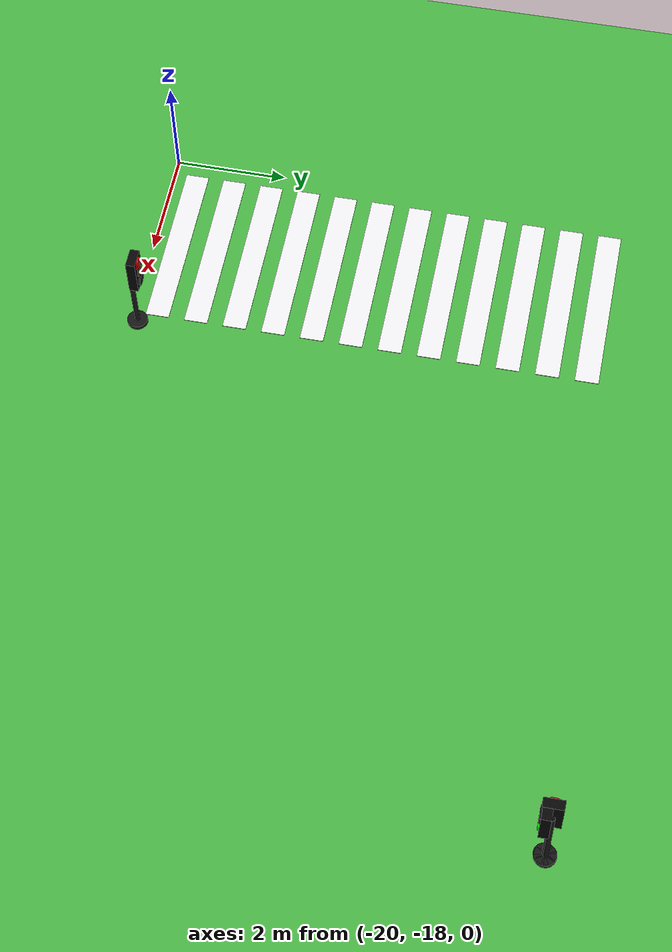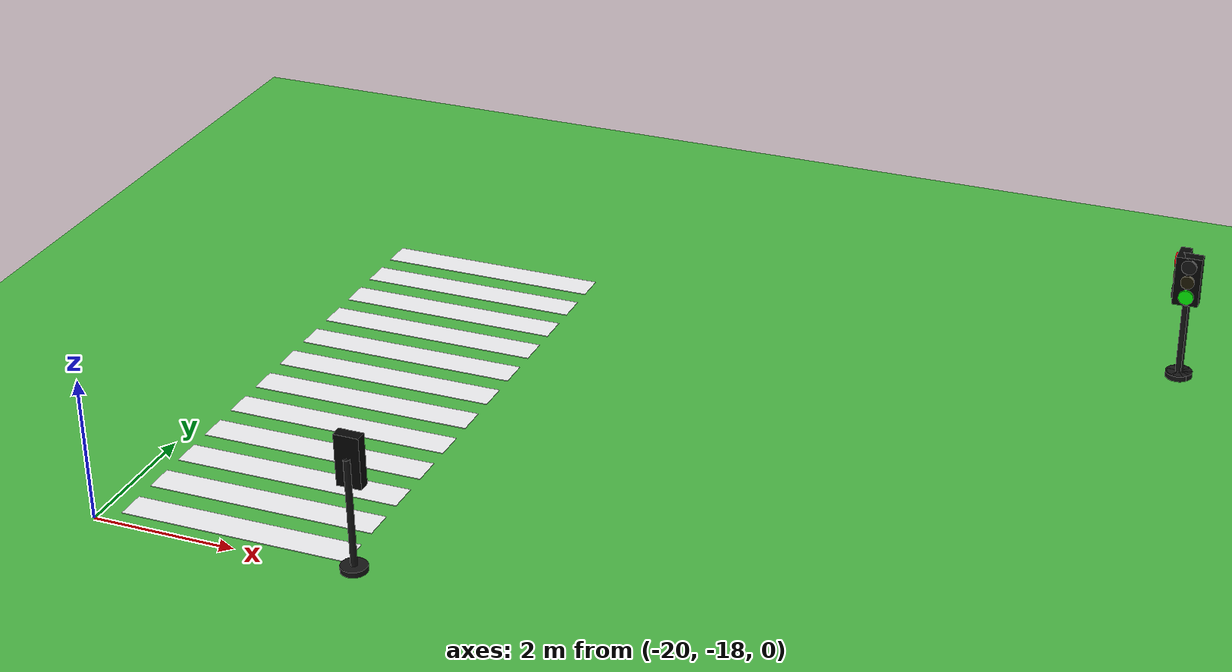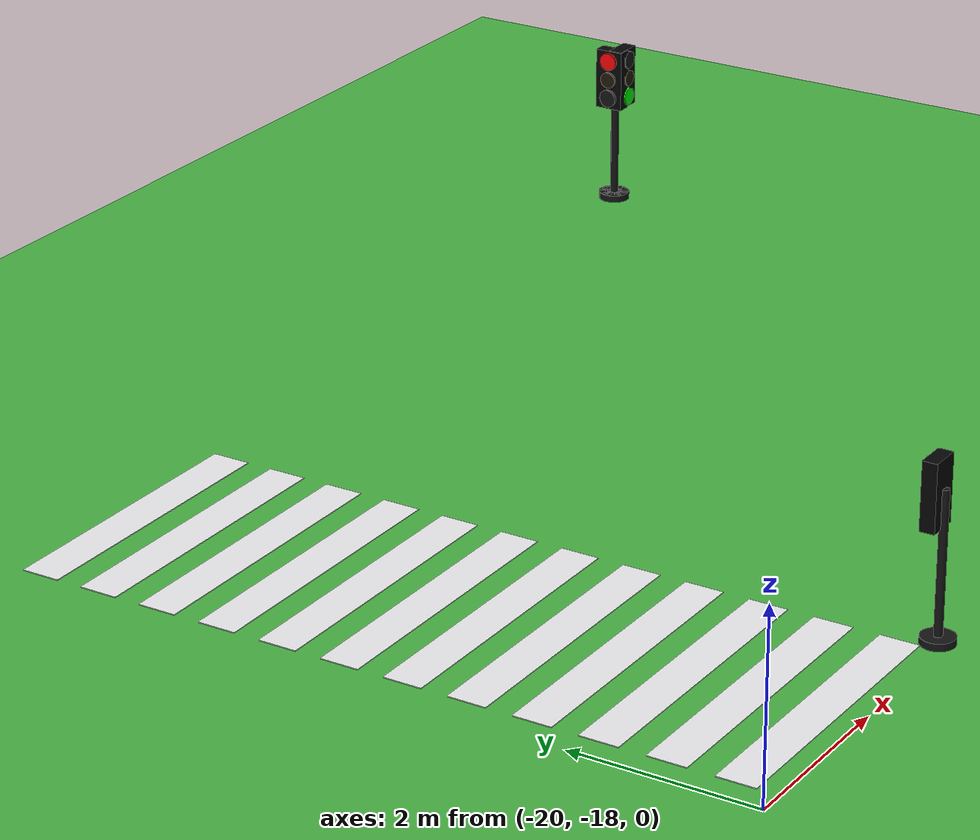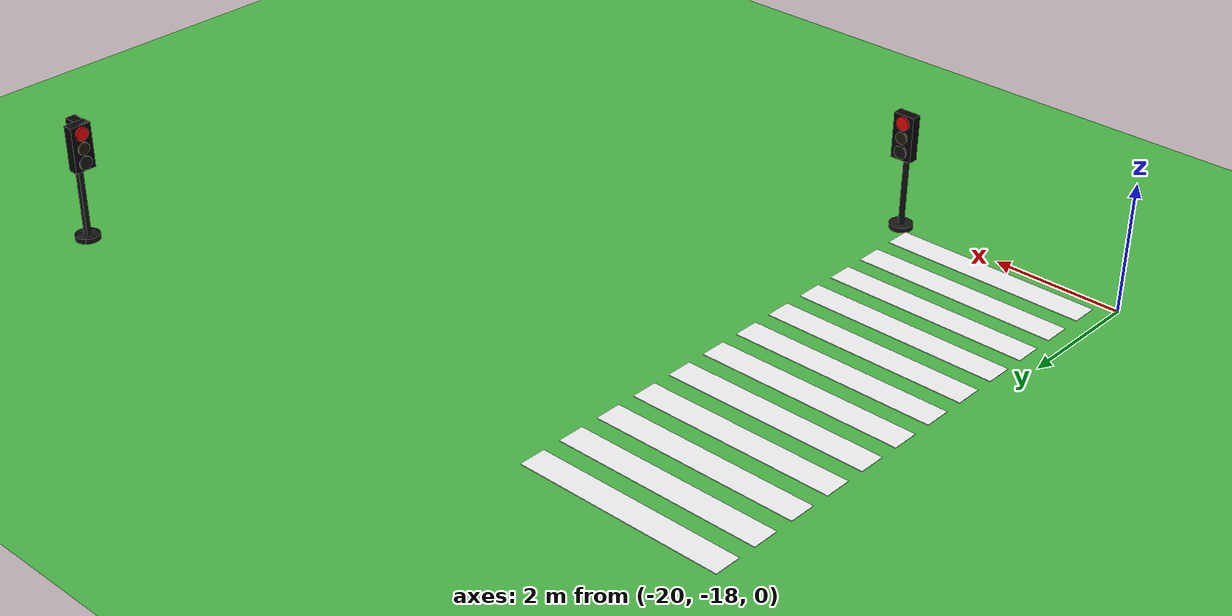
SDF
<sdf version="1.10">
 <world name="city_second">
  <model name="ground_plane">
   <static>true</static>
   <link name="link">
    <collision name="collision">
     <geometry><plane><normal>0 0 1</normal><size>300 300</size></plane></geometry>
    </collision>
    <visual name="visual">
     <geometry><plane><normal>0 0 1</normal><size>300 300</size></plane></geometry>
     <material>
      <ambient>0.280000001 0.689999998 0.25999999 1</ambient>
      <diffuse>0.280000001 0.689999998 0.25999999 1</diffuse>
      <specular>0.0299999993 0.0299999993 0.0299999993 1</specular>
     </material>
    </visual>
    <inertial>
     <mass>1</mass>
     <inertia><ixx>1</ixx><ixy>0</ixy><ixz>0</ixz><iyy>1</iyy><iyz>0</iyz><izz>1</izz></inertia>
    </inertial>
   </link>
  </model>
  <model name="crosswalk_v_2_1_east_5_6">
   <static>true</static>
   <pose>-18.1281 -13.730499999999999 0.017000000000000001 0 0 0</pose>
   <link name="stripe_1">
    <collision name="collision">
     <geometry><box><size>3.2000000000000002 0.41999999999999998 0.01</size></box></geometry>
    </collision>
    <visual name="visual">
     <geometry><box><size>3.2000000000000002 0.41999999999999998 0.01</size></box></geometry>
     <material>
      <ambient>0.920000017 0.920000017 0.930000007 1</ambient>
      <diffuse>0.920000017 0.920000017 0.930000007 1</diffuse>
      <specular>0.0299999993 0.0299999993 0.0299999993 1</specular>
     </material>
    </visual>
    <pose>0 -3.8500000000000001 0 0 0 0</pose>
    <inertial>
     <mass>1</mass>
     <inertia><ixx>1</ixx><ixy>0</ixy><ixz>0</ixz><iyy>1</iyy><iyz>0</iyz><izz>1</izz></inertia>
    </inertial>
   </link>
   <link name="stripe_2">
    <collision name="collision">
     <geometry><box><size>3.2000000000000002 0.41999999999999998 0.01</size></box></geometry>
    </collision>
    <visual name="visual">
     <geometry><box><size>3.2000000000000002 0.41999999999999998 0.01</size></box></geometry>
     <material>
      <ambient>0.920000017 0.920000017 0.930000007 1</ambient>
      <diffuse>0.920000017 0.920000017 0.930000007 1</diffuse>
      <specular>0.0299999993 0.0299999993 0.0299999993 1</specular>
     </material>
    </visual>
    <pose>0 -3.1499999999999999 0 0 0 0</pose>
    <inertial>
     <mass>1</mass>
     <inertia><ixx>1</ixx><ixy>0</ixy><ixz>0</ixz><iyy>1</iyy><iyz>0</iyz><izz>1</izz></inertia>
    </inertial>
   </link>
   <link name="stripe_3">
    <collision name="collision">
     <geometry><box><size>3.2000000000000002 0.41999999999999998 0.01</size></box></geometry>
    </collision>
    <visual name="visual">
     <geometry><box><size>3.2000000000000002 0.41999999999999998 0.01</size></box></geometry>
     <material>
      <ambient>0.920000017 0.920000017 0.930000007 1</ambient>
      <diffuse>0.920000017 0.920000017 0.930000007 1</diffuse>
      <specular>0.0299999993 0.0299999993 0.0299999993 1</specular>
     </material>
    </visual>
    <pose>0 -2.4500000000000002 0 0 0 0</pose>
    <inertial>
     <mass>1</mass>
     <inertia><ixx>1</ixx><ixy>0</ixy><ixz>0</ixz><iyy>1</iyy><iyz>0</iyz><izz>1</izz></inertia>
    </inertial>
   </link>
   <link name="stripe_4">
    <collision name="collision">
     <geometry><box><size>3.2000000000000002 0.41999999999999998 0.01</size></box></geometry>
    </collision>
    <visual name="visual">
     <geometry><box><size>3.2000000000000002 0.41999999999999998 0.01</size></box></geometry>
     <material>
      <ambient>0.920000017 0.920000017 0.930000007 1</ambient>
      <diffuse>0.920000017 0.920000017 0.930000007 1</diffuse>
      <specular>0.0299999993 0.0299999993 0.0299999993 1</specular>
     </material>
    </visual>
    <pose>0 -1.75 0 0 0 0</pose>
    <inertial>
     <mass>1</mass>
     <inertia><ixx>1</ixx><ixy>0</ixy><ixz>0</ixz><iyy>1</iyy><iyz>0</iyz><izz>1</izz></inertia>
    </inertial>
   </link>
   <link name="stripe_5">
    <collision name="collision">
     <geometry><box><size>3.2000000000000002 0.41999999999999998 0.01</size></box></geometry>
    </collision>
    <visual name="visual">
     <geometry><box><size>3.2000000000000002 0.41999999999999998 0.01</size></box></geometry>
     <material>
      <ambient>0.920000017 0.920000017 0.930000007 1</ambient>
      <diffuse>0.920000017 0.920000017 0.930000007 1</diffuse>
      <specular>0.0299999993 0.0299999993 0.0299999993 1</specular>
     </material>
    </visual>
    <pose>0 -1.05 0 0 0 0</pose>
    <inertial>
     <mass>1</mass>
     <inertia><ixx>1</ixx><ixy>0</ixy><ixz>0</ixz><iyy>1</iyy><iyz>0</iyz><izz>1</izz></inertia>
    </inertial>
   </link>
   <link name="stripe_6">
    <collision name="collision">
     <geometry><box><size>3.2000000000000002 0.41999999999999998 0.01</size></box></geometry>
    </collision>
    <visual name="visual">
     <geometry><box><size>3.2000000000000002 0.41999999999999998 0.01</size></box></geometry>
     <material>
      <ambient>0.920000017 0.920000017 0.930000007 1</ambient>
      <diffuse>0.920000017 0.920000017 0.930000007 1</diffuse>
      <specular>0.0299999993 0.0299999993 0.0299999993 1</specular>
     </material>
    </visual>
    <pose>0 -0.34999999999999998 0 0 0 0</pose>
    <inertial>
     <mass>1</mass>
     <inertia><ixx>1</ixx><ixy>0</ixy><ixz>0</ixz><iyy>1</iyy><iyz>0</iyz><izz>1</izz></inertia>
    </inertial>
   </link>
   <link name="stripe_7">
    <collision name="collision">
     <geometry><box><size>3.2000000000000002 0.41999999999999998 0.01</size></box></geometry>
    </collision>
    <visual name="visual">
     <geometry><box><size>3.2000000000000002 0.41999999999999998 0.01</size></box></geometry>
     <material>
      <ambient>0.920000017 0.920000017 0.930000007 1</ambient>
      <diffuse>0.920000017 0.920000017 0.930000007 1</diffuse>
      <specular>0.0299999993 0.0299999993 0.0299999993 1</specular>
     </material>
    </visual>
    <pose>0 0.34999999999999998 0 0 0 0</pose>
    <inertial>
     <mass>1</mass>
     <inertia><ixx>1</ixx><ixy>0</ixy><ixz>0</ixz><iyy>1</iyy><iyz>0</iyz><izz>1</izz></inertia>
    </inertial>
   </link>
   <link name="stripe_8">
    <collision name="collision">
     <geometry><box><size>3.2000000000000002 0.41999999999999998 0.01</size></box></geometry>
    </collision>
    <visual name="visual">
     <geometry><box><size>3.2000000000000002 0.41999999999999998 0.01</size></box></geometry>
     <material>
      <ambient>0.920000017 0.920000017 0.930000007 1</ambient>
      <diffuse>0.920000017 0.920000017 0.930000007 1</diffuse>
      <specular>0.0299999993 0.0299999993 0.0299999993 1</specular>
     </material>
    </visual>
    <pose>0 1.05 0 0 0 0</pose>
    <inertial>
     <mass>1</mass>
     <inertia><ixx>1</ixx><ixy>0</ixy><ixz>0</ixz><iyy>1</iyy><iyz>0</iyz><izz>1</izz></inertia>
    </inertial>
   </link>
   <link name="stripe_9">
    <collision name="collision">
     <geometry><box><size>3.2000000000000002 0.41999999999999998 0.01</size></box></geometry>
    </collision>
    <visual name="visual">
     <geometry><box><size>3.2000000000000002 0.41999999999999998 0.01</size></box></geometry>
     <material>
      <ambient>0.920000017 0.920000017 0.930000007 1</ambient>
      <diffuse>0.920000017 0.920000017 0.930000007 1</diffuse>
      <specular>0.0299999993 0.0299999993 0.0299999993 1</specular>
     </material>
    </visual>
    <pose>0 1.75 0 0 0 0</pose>
    <inertial>
     <mass>1</mass>
     <inertia><ixx>1</ixx><ixy>0</ixy><ixz>0</ixz><iyy>1</iyy><iyz>0</iyz><izz>1</izz></inertia>
    </inertial>
   </link>
   <link name="stripe_10">
    <collision name="collision">
     <geometry><box><size>3.2000000000000002 0.41999999999999998 0.01</size></box></geometry>
    </collision>
    <visual name="visual">
     <geometry><box><size>3.2000000000000002 0.41999999999999998 0.01</size></box></geometry>
     <material>
      <ambient>0.920000017 0.920000017 0.930000007 1</ambient>
      <diffuse>0.920000017 0.920000017 0.930000007 1</diffuse>
      <specular>0.0299999993 0.0299999993 0.0299999993 1</specular>
     </material>
    </visual>
    <pose>0 2.4500000000000002 0 0 0 0</pose>
    <inertial>
     <mass>1</mass>
     <inertia><ixx>1</ixx><ixy>0</ixy><ixz>0</ixz><iyy>1</iyy><iyz>0</iyz><izz>1</izz></inertia>
    </inertial>
   </link>
   <link name="stripe_11">
    <collision name="collision">
     <geometry><box><size>3.2000000000000002 0.41999999999999998 0.01</size></box></geometry>
    </collision>
    <visual name="visual">
     <geometry><box><size>3.2000000000000002 0.41999999999999998 0.01</size></box></geometry>
     <material>
      <ambient>0.920000017 0.920000017 0.930000007 1</ambient>
      <diffuse>0.920000017 0.920000017 0.930000007 1</diffuse>
      <specular>0.0299999993 0.0299999993 0.0299999993 1</specular>
     </material>
    </visual>
    <pose>0 3.1499999999999999 0 0 0 0</pose>
    <inertial>
     <mass>1</mass>
     <inertia><ixx>1</ixx><ixy>0</ixy><ixz>0</ixz><iyy>1</iyy><iyz>0</iyz><izz>1</izz></inertia>
    </inertial>
   </link>
   <link name="stripe_12">
    <collision name="collision">
     <geometry><box><size>3.2000000000000002 0.41999999999999998 0.01</size></box></geometry>
    </collision>
    <visual name="visual">
     <geometry><box><size>3.2000000000000002 0.41999999999999998 0.01</size></box></geometry>
     <material>
      <ambient>0.920000017 0.920000017 0.930000007 1</ambient>
      <diffuse>0.920000017 0.920000017 0.930000007 1</diffuse>
      <specular>0.0299999993 0.0299999993 0.0299999993 1</specular>
     </material>
    </visual>
    <pose>0 3.8500000000000001 0 0 0 0</pose>
    <inertial>
     <mass>1</mass>
     <inertia><ixx>1</ixx><ixy>0</ixy><ixz>0</ixz><iyy>1</iyy><iyz>0</iyz><izz>1</izz></inertia>
    </inertial>
   </link>
  </model>
  <model name="simple_traffic_light_red_west_1">
   <static>true</static>
   <pose>-7.8423600000000002 -9.3772000000000002 0 0 0 1.5708</pose>
   <link name="base">
    <pose>0 0 0.040000000000000001 0 0 0</pose>
    <collision name="collision">
     <geometry>
      <cylinder><radius>0.17999999999999999</radius><length>0.080000000000000002</length></cylinder>
     </geometry>
    </collision>
    <visual name="visual">
     <geometry>
      <cylinder><radius>0.17999999999999999</radius><length>0.080000000000000002</length></cylinder>
     </geometry>
     <material>
      <ambient>0.0799999982 0.0799999982 0.0799999982 1</ambient>
      <diffuse>0.0799999982 0.0799999982 0.0799999982 1</diffuse>
      <specular>0.150000006 0.150000006 0.150000006 1</specular>
      <emissive>0 0 0 1</emissive>
     </material>
    </visual>
    <inertial>
     <mass>1</mass>
     <inertia><ixx>1</ixx><ixy>0</ixy><ixz>0</ixz><iyy>1</iyy><iyz>0</iyz><izz>1</izz></inertia>
    </inertial>
   </link>
   <link name="pole">
    <pose>0 0 0.80000000000000004 0 0 0</pose>
    <collision name="collision">
     <geometry>
      <cylinder><radius>0.044999999999999998</radius><length>1.6000000000000001</length></cylinder>
     </geometry>
    </collision>
    <visual name="visual">
     <geometry>
      <cylinder><radius>0.044999999999999998</radius><length>1.6000000000000001</length></cylinder>
     </geometry>
     <material>
      <ambient>0.0799999982 0.0799999982 0.0799999982 1</ambient>
      <diffuse>0.0799999982 0.0799999982 0.0799999982 1</diffuse>
      <specular>0.150000006 0.150000006 0.150000006 1</specular>
      <emissive>0 0 0 1</emissive>
     </material>
    </visual>
    <inertial>
     <mass>1</mass>
     <inertia><ixx>1</ixx><ixy>0</ixy><ixz>0</ixz><iyy>1</iyy><iyz>0</iyz><izz>1</izz></inertia>
    </inertial>
   </link>
   <link name="signal_box">
    <pose>-7.1054273576010019e-15 0.090000000000003411 1.5500000000000003 0 0 0</pose>
    <collision name="collision">
     <geometry><box><size>0.34000000000000002 0.16 0.71999999999999997</size></box></geometry>
    </collision>
    <visual name="visual">
     <geometry><box><size>0.34000000000000002 0.16 0.71999999999999997</size></box></geometry>
     <material>
      <ambient>0.0199999996 0.0199999996 0.0199999996 1</ambient>
      <diffuse>0.0199999996 0.0199999996 0.0199999996 1</diffuse>
      <specular>0.150000006 0.150000006 0.150000006 1</specular>
      <emissive>0 0 0 1</emissive>
     </material>
    </visual>
    <inertial>
     <mass>1</mass>
     <inertia><ixx>1</ixx><ixy>0</ixy><ixz>0</ixz><iyy>1</iyy><iyz>0</iyz><izz>1</izz></inertia>
    </inertial>
   </link>
   <link name="red_lens">
    <pose>0 0.18100000000000449 1.78 1.5707963267999998 8.0126081257495458e-28 -3.1401849173675498e-16</pose>
    <collision name="collision">
     <geometry><cylinder><radius>0.105</radius><length>0.035000000000000003</length></cylinder></geometry>
    </collision>
    <visual name="visual">
     <geometry><cylinder><radius>0.105</radius><length>0.035000000000000003</length></cylinder></geometry>
     <material>
      <ambient>1 0.0199999996 0.0199999996 1</ambient>
      <diffuse>1 0.0199999996 0.0199999996 1</diffuse>
      <specular>0.150000006 0.150000006 0.150000006 1</specular>
      <emissive>1 0.0199999996 0.0199999996 1</emissive>
     </material>
    </visual>
    <inertial>
     <mass>1</mass>
     <inertia><ixx>1</ixx><ixy>0</ixy><ixz>0</ixz><iyy>1</iyy><iyz>0</iyz><izz>1</izz></inertia>
    </inertial>
   </link>
   <link name="yellow_lens">
    <pose>-7.1054273576010019e-15 0.18200000000000216 1.5500000000000003 1.5707963267999998 8.0126081257495458e-28 -3.1401849173675498e-16</pose>
    <collision name="collision">
     <geometry>
      <cylinder><radius>0.095000000000000001</radius><length>0.035000000000000003</length></cylinder>
     </geometry>
    </collision>
    <visual name="visual">
     <geometry>
      <cylinder><radius>0.095000000000000001</radius><length>0.035000000000000003</length></cylinder>
     </geometry>
     <material>
      <ambient>0.119999997 0.100000001 0.0199999996 1</ambient>
      <diffuse>0.119999997 0.100000001 0.0199999996 1</diffuse>
      <specular>0.150000006 0.150000006 0.150000006 1</specular>
      <emissive>0 0 0 1</emissive>
     </material>
    </visual>
    <inertial>
     <mass>1</mass>
     <inertia><ixx>1</ixx><ixy>0</ixy><ixz>0</ixz><iyy>1</iyy><iyz>0</iyz><izz>1</izz></inertia>
    </inertial>
   </link>
   <link name="green_lens">
    <pose>0 0.18300000000000693 1.3199999999999998 1.5707963267999998 8.0126081257495458e-28 -3.1401849173675498e-16</pose>
    <collision name="collision">
     <geometry><cylinder><radius>0.105</radius><length>0.035000000000000003</length></cylinder></geometry>
    </collision>
    <visual name="visual">
     <geometry><cylinder><radius>0.105</radius><length>0.035000000000000003</length></cylinder></geometry>
     <material>
      <ambient>0.0799999982 0.0799999982 0.0799999982 1</ambient>
      <diffuse>0.0799999982 0.0799999982 0.0799999982 1</diffuse>
      <specular>0.150000006 0.150000006 0.150000006 1</specular>
      <emissive>0 0 0 1</emissive>
     </material>
    </visual>
    <inertial>
     <mass>1</mass>
     <inertia><ixx>1</ixx><ixy>0</ixy><ixz>0</ixz><iyy>1</iyy><iyz>0</iyz><izz>1</izz></inertia>
    </inertial>
   </link>
   <light name="red_glow" type="point">
    <pose>0 0.28 1.78 0 0 0</pose>
    <diffuse>1 0.02 0.02 1</diffuse>
    <specular>1 0.02 0.02 1</specular>
    <attenuation>
     <range>3.0</range>
     <constant>0.8</constant>
     <linear>0.15</linear>
     <quadratic>0.02</quadratic>
    </attenuation>
    <cast_shadows>false</cast_shadows>
   </light>
  </model>
  <model name="simple_traffic_light_red_north_1">
   <static>true</static>
   <pose>-16.361301882303856 -17.892128779718455 0 0 0 0</pose>
   <link name="base">
    <pose>0 0 0.040000000000000001 0 0 0</pose>
    <collision name="collision">
     <geometry>
      <cylinder><radius>0.17999999999999999</radius><length>0.080000000000000002</length></cylinder>
     </geometry>
    </collision>
    <visual name="visual">
     <geometry>
      <cylinder><radius>0.17999999999999999</radius><length>0.080000000000000002</length></cylinder>
     </geometry>
     <material>
      <ambient>0.0799999982 0.0799999982 0.0799999982 1</ambient>
      <diffuse>0.0799999982 0.0799999982 0.0799999982 1</diffuse>
      <specular>0.150000006 0.150000006 0.150000006 1</specular>
      <emissive>0 0 0 1</emissive>
     </material>
    </visual>
    <inertial>
     <mass>1</mass>
     <inertia><ixx>1</ixx><ixy>0</ixy><ixz>0</ixz><iyy>1</iyy><iyz>0</iyz><izz>1</izz></inertia>
    </inertial>
   </link>
   <link name="pole">
    <pose>0 0 0.80000000000000004 0 0 0</pose>
    <collision name="collision">
     <geometry>
      <cylinder><radius>0.044999999999999998</radius><length>1.6000000000000001</length></cylinder>
     </geometry>
    </collision>
    <visual name="visual">
     <geometry>
      <cylinder><radius>0.044999999999999998</radius><length>1.6000000000000001</length></cylinder>
     </geometry>
     <material>
      <ambient>0.0799999982 0.0799999982 0.0799999982 1</ambient>
      <diffuse>0.0799999982 0.0799999982 0.0799999982 1</diffuse>
      <specular>0.150000006 0.150000006 0.150000006 1</specular>
      <emissive>0 0 0 1</emissive>
     </material>
    </visual>
    <inertial>
     <mass>1</mass>
     <inertia><ixx>1</ixx><ixy>0</ixy><ixz>0</ixz><iyy>1</iyy><iyz>0</iyz><izz>1</izz></inertia>
    </inertial>
   </link>
   <link name="signal_box">
    <pose>0 0.090000000000003411 1.55 0 0 0</pose>
    <collision name="collision">
     <geometry><box><size>0.34000000000000002 0.16 0.71999999999999997</size></box></geometry>
    </collision>
    <visual name="visual">
     <geometry><box><size>0.34000000000000002 0.16 0.71999999999999997</size></box></geometry>
     <material>
      <ambient>0.0199999996 0.0199999996 0.0199999996 1</ambient>
      <diffuse>0.0199999996 0.0199999996 0.0199999996 1</diffuse>
      <specular>0.150000006 0.150000006 0.150000006 1</specular>
      <emissive>0 0 0 1</emissive>
     </material>
    </visual>
    <inertial>
     <mass>1</mass>
     <inertia><ixx>1</ixx><ixy>0</ixy><ixz>0</ixz><iyy>1</iyy><iyz>0</iyz><izz>1</izz></inertia>
    </inertial>
   </link>
   <link name="red_lens">
    <pose>0 0.18099999999999739 1.78 1.5707963268000003 0 0</pose>
    <collision name="collision">
     <geometry><cylinder><radius>0.105</radius><length>0.035000000000000003</length></cylinder></geometry>
    </collision>
    <visual name="visual">
     <geometry><cylinder><radius>0.105</radius><length>0.035000000000000003</length></cylinder></geometry>
     <material>
      <ambient>1 0.0199999996 0.0199999996 1</ambient>
      <diffuse>1 0.0199999996 0.0199999996 1</diffuse>
      <specular>0.150000006 0.150000006 0.150000006 1</specular>
      <emissive>1 0.0199999996 0.0199999996 1</emissive>
     </material>
    </visual>
    <inertial>
     <mass>1</mass>
     <inertia><ixx>1</ixx><ixy>0</ixy><ixz>0</ixz><iyy>1</iyy><iyz>0</iyz><izz>1</izz></inertia>
    </inertial>
   </link>
   <link name="yellow_lens">
    <pose>0 0.18200000000000216 1.55 1.5707963268000003 0 0</pose>
    <collision name="collision">
     <geometry>
      <cylinder><radius>0.095000000000000001</radius><length>0.035000000000000003</length></cylinder>
     </geometry>
    </collision>
    <visual name="visual">
     <geometry>
      <cylinder><radius>0.095000000000000001</radius><length>0.035000000000000003</length></cylinder>
     </geometry>
     <material>
      <ambient>0.119999997 0.100000001 0.0199999996 1</ambient>
      <diffuse>0.119999997 0.100000001 0.0199999996 1</diffuse>
      <specular>0.150000006 0.150000006 0.150000006 1</specular>
      <emissive>0 0 0 1</emissive>
     </material>
    </visual>
    <inertial>
     <mass>1</mass>
     <inertia><ixx>1</ixx><ixy>0</ixy><ixz>0</ixz><iyy>1</iyy><iyz>0</iyz><izz>1</izz></inertia>
    </inertial>
   </link>
   <link name="green_lens">
    <pose>0 0.18299999999999983 1.3200000000000001 1.5707963268000003 0 0</pose>
    <collision name="collision">
     <geometry><cylinder><radius>0.105</radius><length>0.035000000000000003</length></cylinder></geometry>
    </collision>
    <visual name="visual">
     <geometry><cylinder><radius>0.105</radius><length>0.035000000000000003</length></cylinder></geometry>
     <material>
      <ambient>0.0799999982 0.0799999982 0.0799999982 1</ambient>
      <diffuse>0.0799999982 0.0799999982 0.0799999982 1</diffuse>
      <specular>0.150000006 0.150000006 0.150000006 1</specular>
      <emissive>0 0 0 1</emissive>
     </material>
    </visual>
    <inertial>
     <mass>1</mass>
     <inertia><ixx>1</ixx><ixy>0</ixy><ixz>0</ixz><iyy>1</iyy><iyz>0</iyz><izz>1</izz></inertia>
    </inertial>
   </link>
   <light name="red_glow" type="point">
    <pose>0 0.28 1.78 0 0 0</pose>
    <diffuse>1 0.02 0.02 1</diffuse>
    <specular>1 0.02 0.02 1</specular>
    <attenuation>
     <range>3.0</range>
     <constant>0.8</constant>
     <linear>0.15</linear>
     <quadratic>0.02</quadratic>
    </attenuation>
    <cast_shadows>false</cast_shadows>
   </light>
  </model>
  <model name="simple_traffic_light_green_south_1_1">
   <static>true</static>
   <pose>-7.8270611436073505 -9.3625744818050709 0 0 0 -3.1415900000000754</pose>
   <link name="base">
    <pose>0 0 0.040000000000000001 0 0 0</pose>
    <collision name="collision">
     <geometry>
      <cylinder><radius>0.17999999999999999</radius><length>0.080000000000000002</length></cylinder>
     </geometry>
    </collision>
    <visual name="visual">
     <geometry>
      <cylinder><radius>0.17999999999999999</radius><length>0.080000000000000002</length></cylinder>
     </geometry>
     <material>
      <ambient>0.0799999982 0.0799999982 0.0799999982 1</ambient>
      <diffuse>0.0799999982 0.0799999982 0.0799999982 1</diffuse>
      <specular>0.150000006 0.150000006 0.150000006 1</specular>
      <emissive>0 0 0 1</emissive>
     </material>
    </visual>
   </link>
   <link name="pole">
    <pose>0 0 0.80000000000000004 0 0 0</pose>
    <collision name="collision">
     <geometry>
      <cylinder><radius>0.044999999999999998</radius><length>1.6000000000000001</length></cylinder>
     </geometry>
    </collision>
    <visual name="visual">
     <geometry>
      <cylinder><radius>0.044999999999999998</radius><length>1.6000000000000001</length></cylinder>
     </geometry>
     <material>
      <ambient>0.0799999982 0.0799999982 0.0799999982 1</ambient>
      <diffuse>0.0799999982 0.0799999982 0.0799999982 1</diffuse>
      <specular>0.150000006 0.150000006 0.150000006 1</specular>
      <emissive>0 0 0 1</emissive>
     </material>
    </visual>
   </link>
   <link name="signal_box">
    <pose>0 0.089999999999999997 1.55 0 0 0</pose>
    <collision name="collision">
     <geometry><box><size>0.34000000000000002 0.16 0.71999999999999997</size></box></geometry>
    </collision>
    <visual name="visual">
     <geometry><box><size>0.34000000000000002 0.16 0.71999999999999997</size></box></geometry>
     <material>
      <ambient>0.0199999996 0.0199999996 0.0199999996 1</ambient>
      <diffuse>0.0199999996 0.0199999996 0.0199999996 1</diffuse>
      <specular>0.150000006 0.150000006 0.150000006 1</specular>
      <emissive>0 0 0 1</emissive>
     </material>
    </visual>
   </link>
   <link name="red_lens">
    <pose>0 0.18099999999999999 1.78 1.5707963268 0 0</pose>
    <collision name="collision">
     <geometry><cylinder><radius>0.105</radius><length>0.035000000000000003</length></cylinder></geometry>
    </collision>
    <visual name="visual">
     <geometry><cylinder><radius>0.105</radius><length>0.035000000000000003</length></cylinder></geometry>
     <material>
      <ambient>0.0799999982 0.0799999982 0.0799999982 1</ambient>
      <diffuse>0.0799999982 0.0799999982 0.0799999982 1</diffuse>
      <specular>0.150000006 0.150000006 0.150000006 1</specular>
      <emissive>0 0 0 1</emissive>
     </material>
    </visual>
   </link>
   <link name="yellow_lens">
    <pose>0 0.182 1.55 1.5707963268 0 0</pose>
    <collision name="collision">
     <geometry>
      <cylinder><radius>0.095000000000000001</radius><length>0.035000000000000003</length></cylinder>
     </geometry>
    </collision>
    <visual name="visual">
     <geometry>
      <cylinder><radius>0.095000000000000001</radius><length>0.035000000000000003</length></cylinder>
     </geometry>
     <material>
      <ambient>0.119999997 0.100000001 0.0199999996 1</ambient>
      <diffuse>0.119999997 0.100000001 0.0199999996 1</diffuse>
      <specular>0.150000006 0.150000006 0.150000006 1</specular>
      <emissive>0 0 0 1</emissive>
     </material>
    </visual>
   </link>
   <link name="green_lens">
    <pose>0 0.183 1.3200000000000001 1.5707963268 0 0</pose>
    <collision name="collision">
     <geometry><cylinder><radius>0.105</radius><length>0.035000000000000003</length></cylinder></geometry>
    </collision>
    <visual name="visual">
     <geometry><cylinder><radius>0.105</radius><length>0.035000000000000003</length></cylinder></geometry>
     <material>
      <ambient>0.0199999996 1 0.0199999996 1</ambient>
      <diffuse>0.0199999996 1 0.0199999996 1</diffuse>
      <specular>0.150000006 0.150000006 0.150000006 1</specular>
      <emissive>0.0199999996 1 0.0199999996 1</emissive>
     </material>
    </visual>
   </link>
   <light name="green_glow" type="point">
    <pose>0 0.28 1.32 0 0 0</pose>
    <diffuse>0.02 1 0.02 1</diffuse>
    <specular>0.02 1 0.02 1</specular>
    <attenuation>
     <range>3.0</range>
     <constant>0.8</constant>
     <linear>0.15</linear>
     <quadratic>0.02</quadratic>
    </attenuation>
    <cast_shadows>false</cast_shadows>
   </light>
  </model>
 </world>
</sdf>
